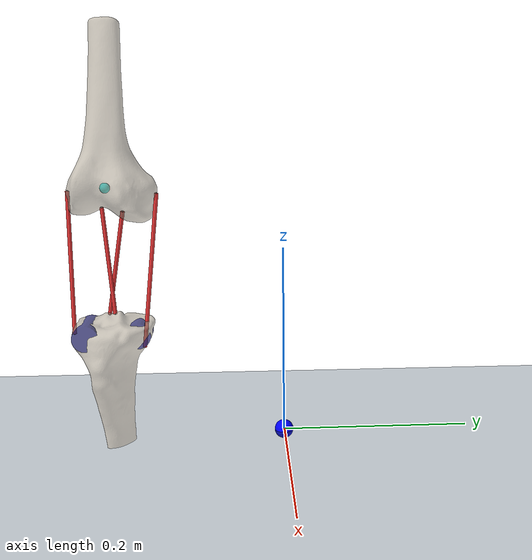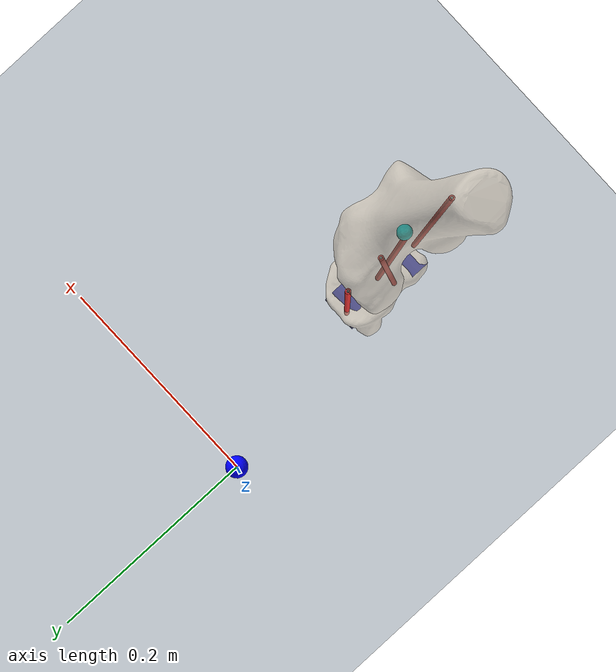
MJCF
<mujoco model="fr3 scene">
  <include file="knee/knee_assets.xml"/>
  <include file="knee/knee_tendons.xml"/>

  <statistic center="0.2 0 0.4" extent=".8"/>

  <default>
    <default class="translation">
      <motor ctrlrange="-30 30" />
    </default>
    <default class="rotation">
      <motor ctrlrange="-4 4"/>
    </default>
  </default>

  <visual>
    <headlight diffuse="0.6 0.6 0.6" ambient="0.3 0.3 0.3" specular="0 0 0"/>
    <rgba haze="0.15 0.25 0.35 1"/>
    <global azimuth="50" elevation="-10"/>
  </visual>

  <asset>
    <texture type="skybox" builtin="gradient" rgb1="0.3 0.5 0.7" rgb2="0 0 0" width="512" height="3072"/>
    <texture type="2d" name="groundplane" builtin="checker" mark="edge" rgb1="0.2 0.3 0.4" rgb2="0.1 0.2 0.3"
      markrgb="0.8 0.8 0.8" width="300" height="300"/>
    <material name="groundplane" texture="groundplane" texuniform="true" texrepeat="5 5" reflectance="0.2"/>
  </asset>

  <worldbody>
    <light pos="0 0 1.5" dir="0 0 -1" directional="true"/>
    <geom name="floor" size="0 0 0.05" type="plane" material="groundplane"/>
    <site name = "world_site" type="sphere" size="0.01" rgba="0 0 1 1" group="1"/>

    <!--           Femur         -->
    <body name="femur" pos="0.00 0.00 0.60" quat="1 0 0 0">
      <joint type="free" />

      <geom class="visuals" euler="0 0 0" mesh="femur mirror mesh" pos="0 0 0" type="mesh" />
      <site name="attachment_site2" rgba="0 1 1 1" size="0.005" group="1" quat="0 0.7071068 0.7071068 0" pos="0.042 -0.175 -0.332" />
      <inertial
        fullinertia="0.0014471221093789871 0.0013713473639596421 0.00026087716802195016 7.836769453642076e-08 0.00014400130245007057 -4.208930881634612e-05"
        mass="0.5077506167421568"
        pos="0.04206533826380333 0.17074902085470534 -0.2976383647493416" />

      <site name="VKB_start_model" pos="0.040 -0.179 -0.351" size="0.001" type="sphere" />
      <site name="HKB_start_model" pos="0.041 -0.159 -0.355" size="0.001" type="sphere" />
      <site name="sMCL_start_model" pos="0.038979415893554685 -0.12602641296386718 -0.33768609619140627" size="0.001" type="sphere" />
      <site name="LCL_start_model" pos="0.03787437820434571 -0.21168870544433593 -0.3351375732421875" size="0.001" type="sphere" />

      <geom class="collisions" mesh="femur_0" name="femur_0" type="mesh" />
      <geom class="collisions" mesh="femur_1" name="femur_1" type="mesh" />
      <geom class="collisions" mesh="femur_2" name="femur_2" type="mesh" />
      <geom class="collisions" mesh="femur_3" name="femur_3" type="mesh" />
      <geom class="collisions" mesh="femur_4" name="femur_4" type="mesh" />
      <geom class="collisions" mesh="femur_5" name="femur_5" type="mesh" />
      <geom class="collisions" mesh="femur_6" name="femur_6" type="mesh" />
      <geom class="collisions" mesh="femur_7" name="femur_7" type="mesh" />
      <geom class="collisions" mesh="femur_8" name="femur_8" type="mesh" />
      <geom class="collisions" mesh="femur_9" name="femur_9" type="mesh" />

    </body>

    <!--           Tibia         -->
    <body name="tibia" pos="0.0 0.00 0.5" quat="1 0 0 0">
      <geom class="visuals" euler="0 0 0" mesh="tibia mirror mesh" pos="0 0 0" type="mesh" />
      <inertial
        fullinertia="0.0008780700528212282 0.000882003973073614 0.00018810237832225102 -2.0773214139677317e-05 -0.00017248916504192767 -0.00011027907295235728"
        mass="0.4452526927806469"
        pos="0.035537882962384665 0.1738143285325765 -0.42422270065004697" />

      <site name="VKB_end_model" pos="0.035 -0.171 -0.359" size="0.001" type="sphere" />
      <site name="HKB_end_model" pos="0.024 -0.178 -0.362" size="0.001" type="sphere" />
      <site name="sMCL_end_model" pos="0.032 -0.143 -0.395" size="0.001" type="sphere" />
      <site name="LCL_end_model" pos="0.035 -0.212 -0.379" size="0.001" type="sphere" />

      <geom class="collisions" mesh="tibia_0" name="tibia_0" type="mesh" />
      <geom class="collisions" mesh="tibia_1" name="tibia_1" type="mesh" />
      <geom class="collisions" mesh="tibia_2" name="tibia_2" type="mesh" />
      <geom class="collisions" mesh="tibia_3" name="tibia_3" type="mesh" />
      <geom class="collisions" mesh="tibia_4" name="tibia_4" type="mesh" />
      <geom class="collisions" mesh="tibia_5" name="tibia_5" type="mesh" />
      <geom class="collisions" mesh="tibia_6" name="tibia_6" type="mesh" />
      <geom class="collisions" mesh="tibia_7" name="tibia_7" type="mesh" />
      <geom class="collisions" mesh="tibia_8" name="tibia_8" type="mesh" />
      <geom class="collisions" mesh="tibia_9" name="tibia_9" type="mesh" />
      <geom class="collisions" mesh="tibia_10" name="tibia_10" type="mesh" />
      <geom class="collisions" mesh="tibia_11" name="tibia_11" type="mesh" />
      <geom class="collisions" mesh="tibia_12" name="tibia_12" type="mesh" />

      <geom class="visuals"
        type="cylinder" fromto="0.065 -0.197 -0.377 0.018 -0.197 -0.377"
        name="LCL_wrap" rgba=".2 .2 .5 0.8" size="0.013"/>

      <geom class="visuals"
        type="cylinder" fromto="0.050 -0.148 -0.379 0.020 -0.148 -0.379"
        name="MCL_wrap" rgba=".2 .2 .5 0.8" size="0.013"/>
        <!-- pos="0.035 0.143 -0.37" size="0.017 0.01 0.004" -->
    </body>

  </worldbody>

  <!--        Actuators        -->
   <!-- refsite="world_site" -->
  <actuator>
    <motor name="F_x" site="attachment_site2" refsite="world_site" gear="1 0 0 0 0 0" class="translation"/>
    <motor name="F_y" site="attachment_site2" refsite="world_site" gear="0 1 0 0 0 0" class="translation"/>
    <motor name="F_z" site="attachment_site2" refsite="world_site" gear="0 0 1 0 0 0" class="translation"/>
    <motor name="tau_x" site="attachment_site2" refsite="world_site" gear="0 0 0 1 0 0" class="rotation"/>
    <motor name="tau_y" site="attachment_site2" refsite="world_site" gear="0 0 0 0 1 0" ctrlrange="-0.5 0.5"/>
    <motor name="tau_z" site="attachment_site2" refsite="world_site" gear="0 0 0 0 0 1" class="rotation"/>
    <motor name="tendon stiffness" site="world_site" ctrlrange="10 4000"/>
    <motor name="debug" site="world_site" ctrlrange="0.01 0.1"/>
    <motor name="L_ACL" site="world_site" ctrlrange="0.01 0.08"/>
    <motor name="L_PCL" site="world_site" ctrlrange="0.01 0.08"/>
    <motor name="L_sMCL" site="world_site" ctrlrange="0.01 0.08"/>
    <motor name="L_LCL" site="world_site" ctrlrange="0.01 0.08"/>
  </actuator>

  <sensor>
    <tendonpos name="ACL" tendon="ACL"/>
    <tendonpos name="PCL" tendon="PCL"/>
    <tendonpos name="sMCL" tendon="sMCL"/>
    <tendonpos name="LCL" tendon="LCL"/>
  </sensor>

  <keyframe>
    <key name="start" qpos='0.0239472 -0.0324271 0.511873 0.998534 0.0440904 0.0313194 -0.00238986' ctrl="0 0 0 0 0 0 2000 0.072 0.018 0.025 0.062 0.042"/>
  </keyframe>
</mujoco>

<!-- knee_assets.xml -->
<mujoco model="knee_assets">
    <compiler angle="radian" autolimits="true" texturedir="assets" />
    <option integrator="implicit" />
    <asset>
        <material name="bone" reflectance="1" shininess="0" specular="0" rgba="0.68 0.64 0.57 1" />
            <!-- Main meshes -->
        <mesh file="knee/meshes/tibia.stl" name="tibia mesh" scale="0.001 0.001 0.001" />
        <mesh file="knee/meshes/tibia_mirror.stl" name="tibia mirror mesh" scale="0.001 0.001 0.001" />
        <mesh file="knee/meshes/tracker tibia.stl" name="tibia tracker mesh" scale="0.001 0.001 0.001" />
        <mesh file="knee/meshes/fibula.stl" name="fibula mesh" scale="0.001 0.001 0.001" />
        <mesh file="knee/meshes/patella.stl" name="patella mesh" scale="0.001 0.001 0.001" />
        <mesh file="knee/meshes/femur.stl" name="femur mesh" scale="0.001 0.001 0.001" />
        <mesh file="knee/meshes/femur_mirror.stl" name="femur mirror mesh" scale="0.001 0.001 0.001" />
        <mesh file="knee/meshes/tracker femur.stl" name="femur tracker mesh" scale="0.001 0.001 0.001" />
            <!-- Collision meshes -->
        <!-- Femur -->
        <mesh file="knee/meshes/convex_meshes/femur_mirror_0.stl" name="femur_0" scale="0.001 0.001 0.001" />
        <mesh file="knee/meshes/convex_meshes/femur_mirror_1.stl" name="femur_1" scale="0.001 0.001 0.001" />
        <mesh file="knee/meshes/convex_meshes/femur_mirror_2.stl" name="femur_2" scale="0.001 0.001 0.001" />
        <mesh file="knee/meshes/convex_meshes/femur_mirror_3.stl" name="femur_3" scale="0.001 0.001 0.001" />
        <mesh file="knee/meshes/convex_meshes/femur_mirror_4.stl" name="femur_4" scale="0.001 0.001 0.001" />
        <mesh file="knee/meshes/convex_meshes/femur_mirror_5.stl" name="femur_5" scale="0.001 0.001 0.001" />
        <mesh file="knee/meshes/convex_meshes/femur_mirror_6.stl" name="femur_6" scale="0.001 0.001 0.001" />
        <mesh file="knee/meshes/convex_meshes/femur_mirror_7.stl" name="femur_7" scale="0.001 0.001 0.001" />
        <mesh file="knee/meshes/convex_meshes/femur_mirror_8.stl" name="femur_8" scale="0.001 0.001 0.001" />
        <mesh file="knee/meshes/convex_meshes/femur_mirror_9.stl" name="femur_9" scale="0.001 0.001 0.001" />
        <!-- Tibia -->
        <mesh file="knee/meshes/convex_meshes/tibia_mirror_0.stl" name="tibia_0" scale="0.001 0.001 0.001" />
        <mesh file="knee/meshes/convex_meshes/tibia_mirror_1.stl" name="tibia_1" scale="0.001 0.001 0.001" />
        <mesh file="knee/meshes/convex_meshes/tibia_mirror_2.stl" name="tibia_2" scale="0.001 0.001 0.001" />
        <mesh file="knee/meshes/convex_meshes/tibia_mirror_3.stl" name="tibia_3" scale="0.001 0.001 0.001" />
        <mesh file="knee/meshes/convex_meshes/tibia_mirror_4.stl" name="tibia_4" scale="0.001 0.001 0.001" />
        <mesh file="knee/meshes/convex_meshes/tibia_mirror_5.stl" name="tibia_5" scale="0.001 0.001 0.001" />
        <mesh file="knee/meshes/convex_meshes/tibia_mirror_6.stl" name="tibia_6" scale="0.001 0.001 0.001" />
        <mesh file="knee/meshes/convex_meshes/tibia_mirror_7.stl" name="tibia_7" scale="0.001 0.001 0.001" />
        <mesh file="knee/meshes/convex_meshes/tibia_mirror_8.stl" name="tibia_8" scale="0.001 0.001 0.001" />
        <mesh file="knee/meshes/convex_meshes/tibia_mirror_9.stl" name="tibia_9" scale="0.001 0.001 0.001" />
        <mesh file="knee/meshes/convex_meshes/tibia_mirror_10.stl" name="tibia_10" scale="0.001 0.001 0.001" />
        <mesh file="knee/meshes/convex_meshes/tibia_mirror_11.stl" name="tibia_11" scale="0.001 0.001 0.001" />
        <mesh file="knee/meshes/convex_meshes/tibia_mirror_12.stl" name="tibia_12" scale="0.001 0.001 0.001" />
        <!-- Fibula -->
        <mesh file="knee/meshes/convex_meshes/fibula_0.stl" name="fibula_0" scale="0.001 0.001 0.001" />
        <mesh file="knee/meshes/convex_meshes/fibula_1.stl" name="fibula_1" scale="0.001 0.001 0.001" />
        <mesh file="knee/meshes/convex_meshes/fibula_2.stl" name="fibula_2" scale="0.001 0.001 0.001" />
        <mesh file="knee/meshes/convex_meshes/fibula_3.stl" name="fibula_3" scale="0.001 0.001 0.001" />
        <mesh file="knee/meshes/convex_meshes/fibula_4.stl" name="fibula_4" scale="0.001 0.001 0.001" />
        <mesh file="knee/meshes/convex_meshes/fibula_5.stl" name="fibula_5" scale="0.001 0.001 0.001" />
        <mesh file="knee/meshes/convex_meshes/fibula_6.stl" name="fibula_6" scale="0.001 0.001 0.001" />
        <mesh file="knee/meshes/convex_meshes/fibula_7.stl" name="fibula_7" scale="0.001 0.001 0.001" />
        <mesh file="knee/meshes/convex_meshes/fibula_8.stl" name="fibula_8" scale="0.001 0.001 0.001" />
        <mesh file="knee/meshes/convex_meshes/fibula_9.stl" name="fibula_9" scale="0.001 0.001 0.001" />
        <mesh file="knee/meshes/convex_meshes/fibula_10.stl" name="fibula_10" scale="0.001 0.001 0.001" />
        <mesh file="knee/meshes/convex_meshes/fibula_11.stl" name="fibula_11" scale="0.001 0.001 0.001" />
        <mesh file="knee/meshes/convex_meshes/fibula_12.stl" name="fibula_12" scale="0.001 0.001 0.001" />
        <mesh file="knee/meshes/convex_meshes/fibula_13.stl" name="fibula_13" scale="0.001 0.001 0.001" />
        <mesh file="knee/meshes/convex_meshes/fibula_14.stl" name="fibula_14" scale="0.001 0.001 0.001" />
        <!-- Patella -->
        <mesh file="knee/meshes/convex_meshes/patella_0.stl" name="patella_0" scale="0.001 0.001 0.001" />
        <mesh file="knee/meshes/convex_meshes/patella_1.stl" name="patella_1" scale="0.001 0.001 0.001" />
        <mesh file="knee/meshes/convex_meshes/patella_2.stl" name="patella_2" scale="0.001 0.001 0.001" />
    </asset>

    <default>
        <default class="collisions">
            <geom type="mesh" contype="3" conaffinity="2" group="0" friction="0.7" solref="0.015 1"
                solimp="0.95 0.99 0.003" rgba="0.68 0.64 0.57 0.0" />
        </default>
        <default class="visuals">
            <geom type="mesh" contype="0" conaffinity="0" group="2" material="bone"
                rgba="0.68 0.64 0.57 0.6" />
        </default>
        <default class="tracker">
            <geom type="mesh" contype="0" conaffinity="0" group="2" rgba="0.2 0.2 1 0.2" />
        </default>
    </default>

</mujoco>

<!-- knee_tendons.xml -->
<mujoco model="knee_tendons">
    <tendon>
        <spatial name="ACL" stiffness="2000.0" damping="200" springlength="0 0.014"
            width="0.002" rgba="0.9 0.2 0.2 1">
            <site site="VKB_start_model" />
            <site site="VKB_end_model" />
        </spatial>
        <spatial name="PCL" stiffness="2000.0" damping="200" springlength="0 0.026"
            width="0.002" rgba="0.9 0.2 0.2 1">
            <site site="HKB_start_model" />
            <site site="HKB_end_model" />
        </spatial>
        <spatial name="sMCL" stiffness="2000.0" damping="200" springlength="0 0.061"
            width="0.002" rgba="0.9 0.2 0.2 0.9">
            <site site="sMCL_start_model" />
            <geom geom="MCL_wrap"/>
            <site site="sMCL_end_model" />
        </spatial>
        <spatial name="LCL" stiffness="2000.0" damping="200" springlength="0 0.037"
            width="0.002" rgba="0.9 0.2 0.2 0.9">
            <site site="LCL_start_model" />
            <geom geom="LCL_wrap"/>
            <site site="LCL_end_model" />
        </spatial>
    </tendon>
</mujoco>
